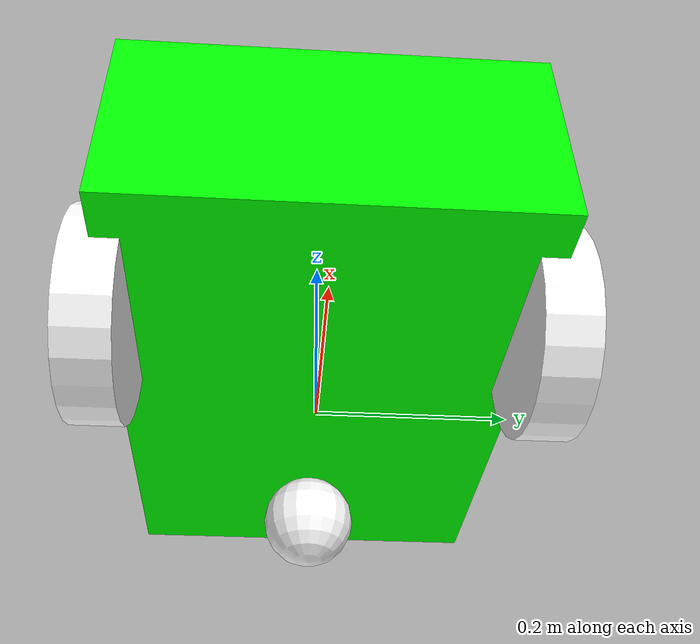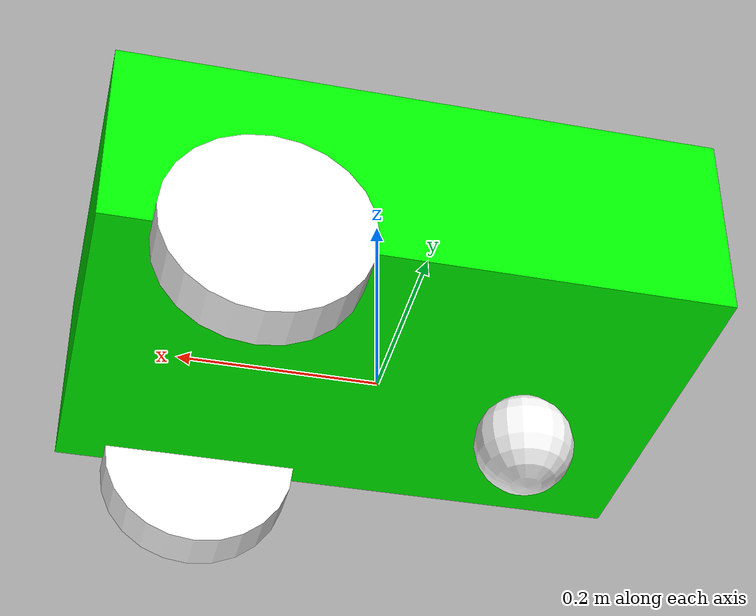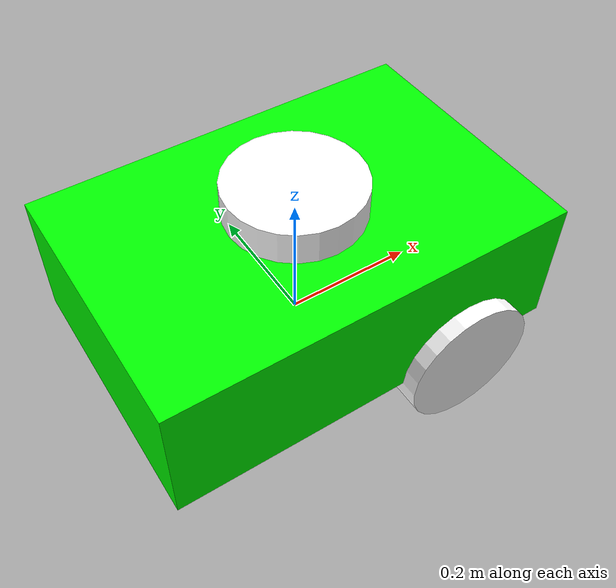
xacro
<?xml version="1.0"?>
<robot name="my_custom_bot" xmlns:xacro="http://www.ros.org/wiki/xacro">

    <!-- Define material colors  -->
    <material name = "grey">
        <color rgba = "0.7 0.7 0.1 1"/>
    </material>

    <material name="green">
        <color rgba="0 1 0 1"/>
    </material>

    <material name="white">
        <color rgba="1 1 1 1"/>
    </material>

    <!-- links -->

    <link name= "base_footprint"></link>
    <link name = "base_link">
        <visual>
            <geometry>
                <box size="0.6 0.4 0.2"/>
            </geometry>
            <origin xyz="0 0 0.1" rpy = "0 0 0"/>
            <material name="green"/>
        </visual>
    </link>

    <link name="lidar_link">
        <visual>
            <geometry>
                <cylinder radius="0.1" length="0.05"/>
            </geometry>
            <origin xyz="0 0 0" rpy = "0 0 0"/>
            <material name="white"/>
        </visual>
    </link>

    <xacro:macro name="wheel_link" params="prefix">
        <link name="${prefix}_wheel_link">
            <visual>
                <geometry>
                    <cylinder radius="0.1" length="0.05"/>
                </geometry>
                <origin xyz="0 0 0" rpy = "1.57 0 0"/>
                <material name="white"/>
            </visual>
        </link>
    </xacro:macro>

    <!-- call the xacro macro to create wheel links -->
    <xacro:wheel_link prefix="rear_right"/>
    <xacro:wheel_link prefix="rear_left"/>

    <link name="front_caster_wheel">
        <visual>
            <geometry>
                <sphere radius="0.05"/>
            </geometry>
            <origin xyz="0 0 0" rpy = "0 0 0"/>
            <material name="white"/>
        </visual>

    </link>

    <!-- Joints  -->
    <joint name= "base_joint" type="fixed">
        <parent link="base_footprint"/>
        <child link="base_link"/>
        <origin xyz="0 0 0" rpy="0 0 0"/>
    </joint>

    <joint name="base_lidar_joint" type="fixed">
        <parent link="base_link"/>
        <child link="lidar_link"/>
        <origin xyz="0 0 0.225" rpy="0 0 0"/>
    </joint>

    <joint name="base_rear_right_wheel_joint" type="continuous">
        <parent link="base_link"/>
        <child link="rear_right_wheel_link"/>
        <origin xyz="0.15 -0.2 0" rpy="0 0 0"/>
        <axis xyz="0 1 0"/>
    </joint>

    <joint name="base_rear_left_wheel_joint" type="continuous">
        <parent link="base_link"/>
        <child link="rear_left_wheel_link"/>
        <origin xyz="0.15 0.2 0" rpy="0 0 0"/>
        <axis xyz="0 1 0"/>
    </joint>

    <joint name="base_front_caster_wheel_joint" type="continuous">
        <parent link="base_link"/>
        <child link="front_caster_wheel"/>
        <origin xyz="-0.15 0 -0.05" rpy="0 0 0"/>
        <axis xyz="0 0 1"/>
    </joint>
</robot>
